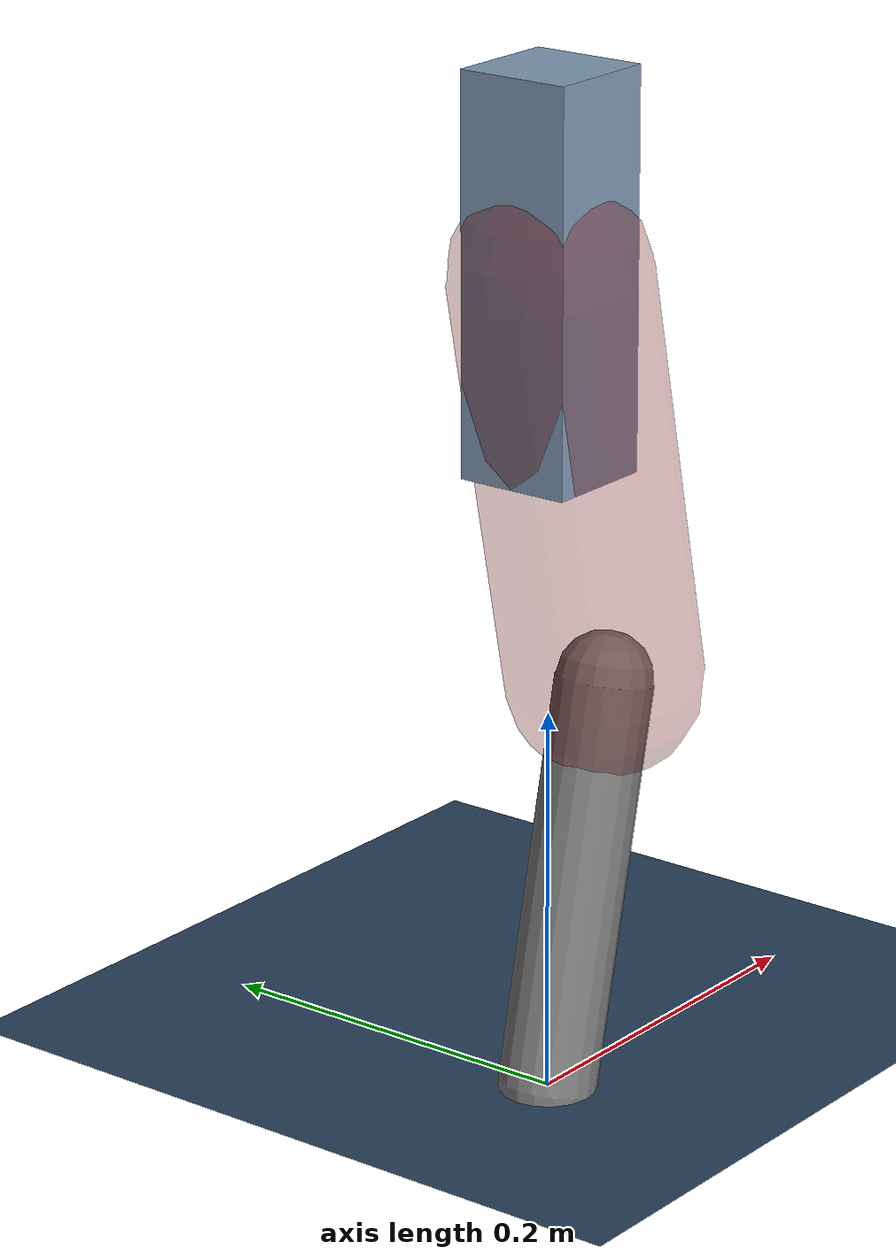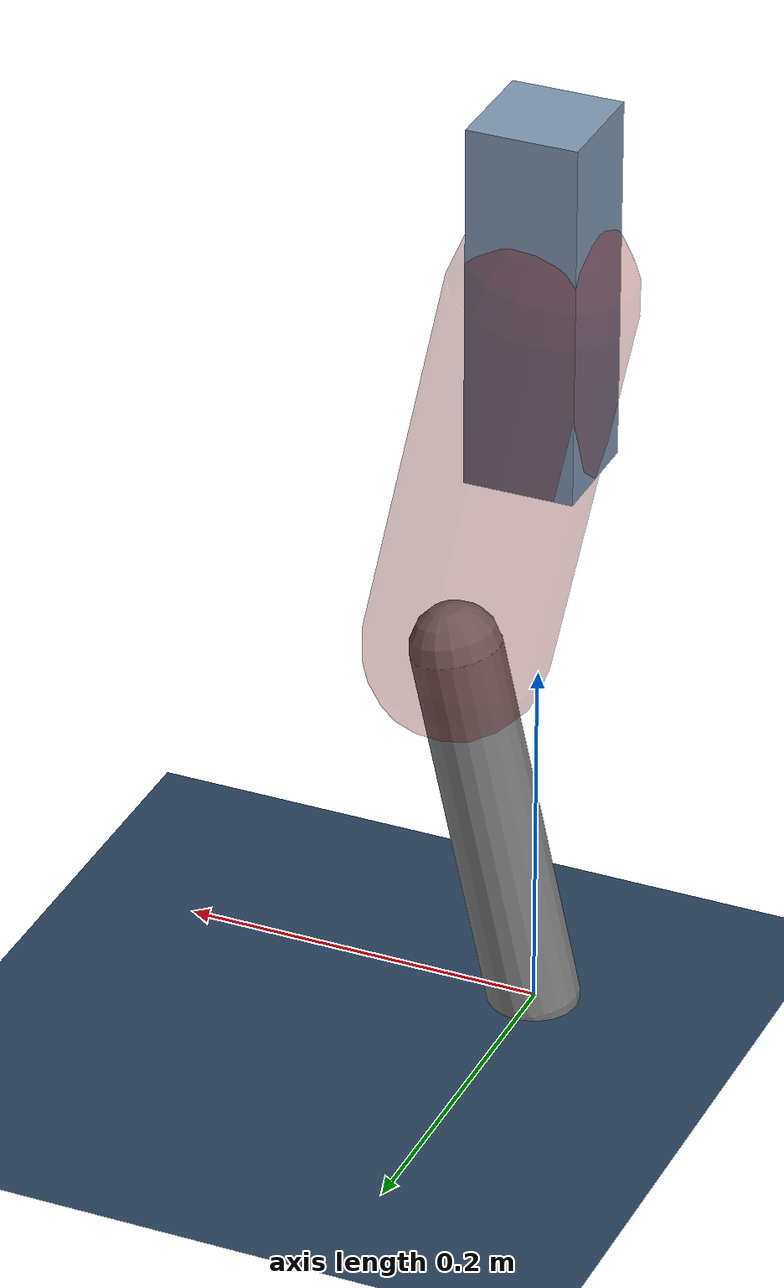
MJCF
<mujoco model="Hopper2D">
	<compiler inertiafromgeom="true" angle="radian" />
	<option timestep="0.001" integrator="implicit" cone="elliptic" solver="Newton" tolerance="1e-10" />

	<default>
		<geom contype="1" conaffinity="1" condim="3" friction="2 0.005 0.0001" solref="0.005 1" />
		<joint limited="true" damping="0.1" />
	</default>

	<asset>
		<texture name="skybox" type="skybox" builtin="gradient" rgb1=".4 .6 .8" rgb2="0 0 0" width="800" height="800" />
		<texture name="grid" type="2d" builtin="checker" rgb1=".1 .2 .3" rgb2=".2 .3 .4" width="300" height="300" mark="edge" markrgb=".2 .3 .4" />
		<material name="ground" texture="grid" texrepeat="1 1" texuniform="true" reflectance="0.1" />
		<material name="leg" rgba="0.5 0.6 0.7 1" />
	</asset>

	<worldbody>

		<geom name="floor" type="plane" size="5 5 0.25" material="ground" />

		<light directional="false" diffuse="0.8 0.8 0.8" specular="0.3 0.3 0.3" pos="0 0 2" dir="0 0 -1" />
		<light mode="targetbodycom" target="base" directional="false" diffuse="0.8 0.8 0.8" specular="0.3 0.3 0.3" pos="0 0 2" dir="0 0 -1" />

		<camera name="fixed" pos="0 -2 1" xyaxes="1 0 0 0 0 1" />
		<camera name="tracking" mode="trackcom" pos="0 -3 1" />

		<body name="root" pos="0 0 0.42235358638379483">
			<joint name="slide_x" type="slide" axis="1 0 0" range="-100 100" />
			<joint name="slide_z" type="slide" axis="0 0 1" range="0 10" />

			<body name="base" pos="0 0 0">
				<geom name="torso" type="box" size="0.03 0.03 0.1" mass="2.872" material="leg" />

				<body name="link1" pos="0 0 0" euler="0 1.361834062482433 0">
					<joint type="hinge" axis="0 -1 0" pos="0 0 0" name="hinge1" limited="true" range="-3.14 3.14" stiffness="0" damping="0.1" />
					<geom name="thigh" type="capsule" fromto="0 0 0 0.22272408829076387 0 0" size="0.05" rgba="0.5 0 0 0.3" mass="0.786582629555986" />

					<body name="link2" pos="0.22272408829076387 0 0" euler="0 0.43118985047625413 0">
						<joint type="hinge" axis="0 -1 0" pos="0 0 0" name="hinge2" limited="true" range="-3.14 3.14" stiffness="0" damping="0.1" />
						<geom name="shank" type="capsule" fromto="0 0 0 0.20962949809303094 0 0" size="0.025" mass="0.40900359847442475" />

					</body>
				</body>
			</body>
		</body>
	</worldbody>

	<actuator>
		<motor name="torque1" joint="hinge1" ctrlrange="-113.7694746616805 113.7694746616805" ctrllimited="true" gear="1" />
		<motor name="torque2" joint="hinge2" ctrlrange="-29.73915868099136 29.73915868099136" ctrllimited="true" gear="1" />
	</actuator>
</mujoco>
